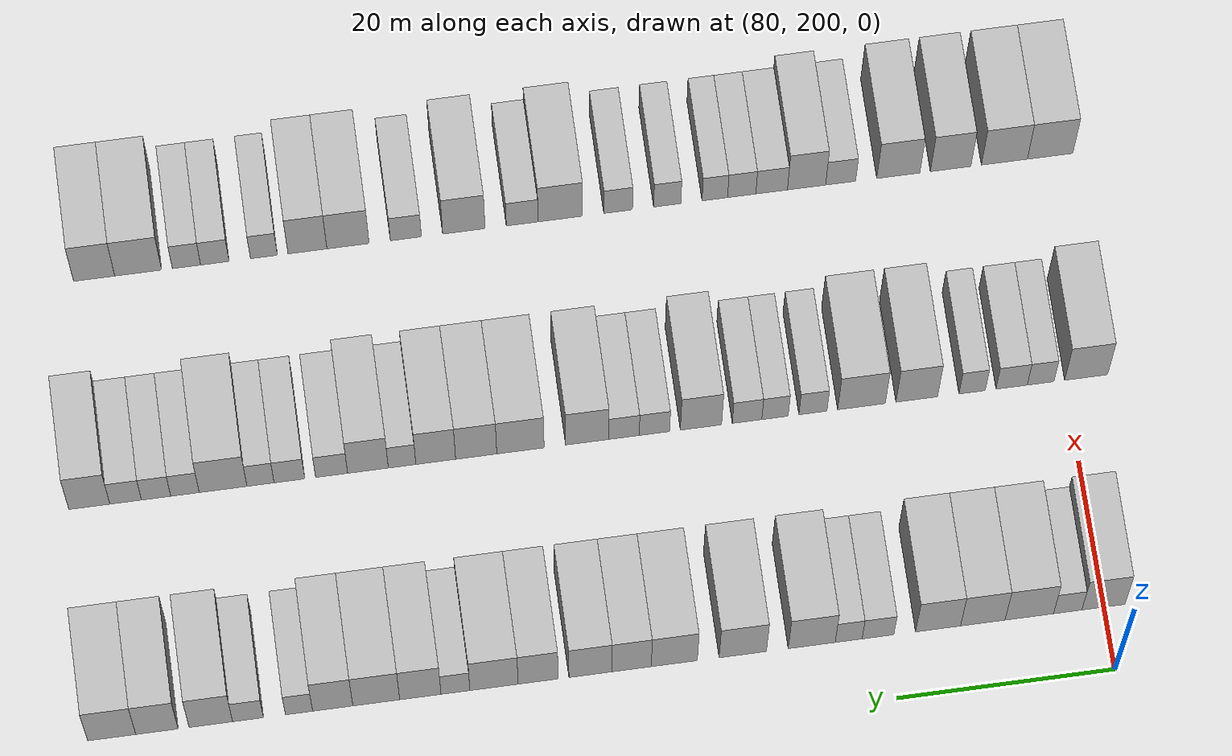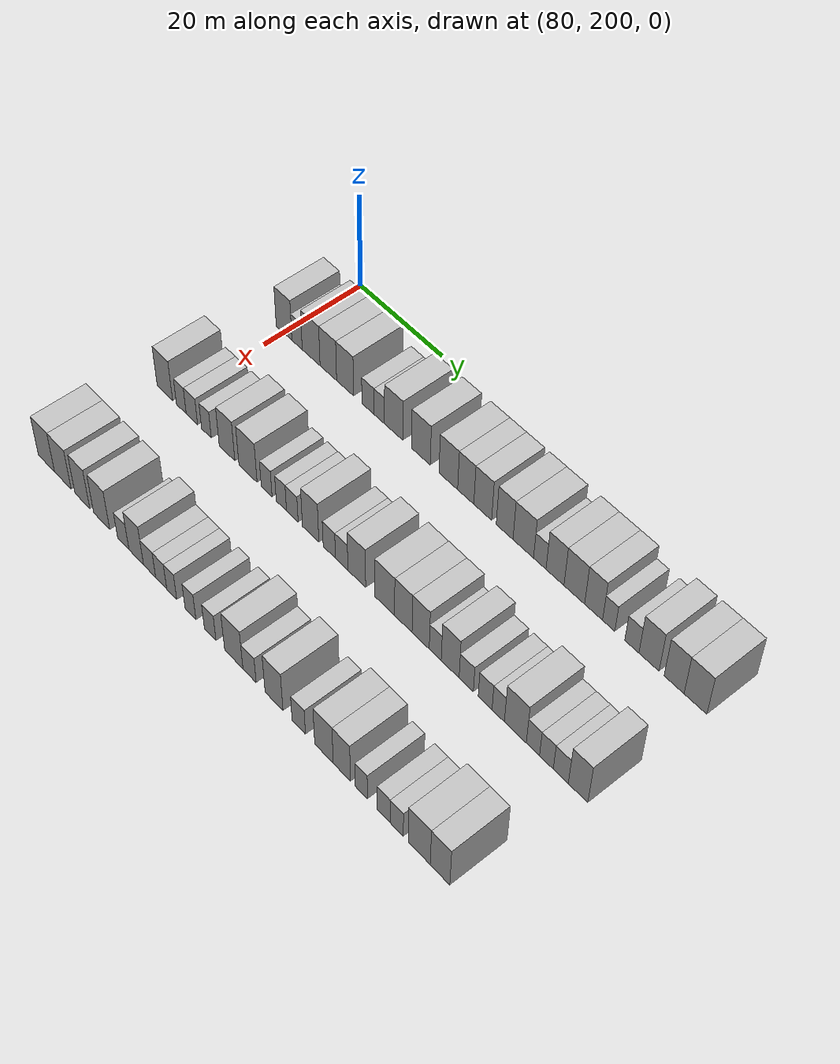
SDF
<sdf version="1.6">
 <world name="default">
  <model name="building_711">
   <static>1</static>
   <pose>91.0000 200.0898 0 0.000000 0.000000 0.000000</pose>
   <link name="link">
    <pose>0 0 4.50 0 0 0</pose>
    <collision name="collision"><geometry><box><size>10.0000 3.9812 9.0000</size></box></geometry></collision>
    <visual name="visual">
     <cast_shadows>0</cast_shadows>
     <geometry><box><size>10.0000 3.9812 9.0000</size></box></geometry>
     <material>
      <script>
       <uri>model://HANNAS_wall/materials/scripts</uri>
       <uri>model://HANNAS_wall/materials/textures</uri>
       <name>vrc/HANNAS_wall</name>
      </script>
     </material>
    </visual>
   </link>
  </model>
  <model name="building_712">
   <static>1</static>
   <pose>91.0000 203.3898 0 0.000000 0.000000 0.000000</pose>
   <link name="link">
    <pose>0 0 3.00 0 0 0</pose>
    <collision name="collision"><geometry><box><size>10.0000 2.6187 6.0000</size></box></geometry></collision>
    <visual name="visual">
     <cast_shadows>0</cast_shadows>
     <geometry><box><size>10.0000 2.6187 6.0000</size></box></geometry>
     <material>
      <script>
       <uri>model://HANNAS_wall/materials/scripts</uri>
       <uri>model://HANNAS_wall/materials/textures</uri>
       <name>vrc/HANNAS_wall</name>
      </script>
     </material>
    </visual>
   </link>
  </model>
  <model name="building_713">
   <static>1</static>
   <pose>91.0000 206.9348 0 0.000000 0.000000 0.000000</pose>
   <link name="link">
    <pose>0 0 4.50 0 0 0</pose>
    <collision name="collision"><geometry><box><size>10.0000 4.4713 9.0000</size></box></geometry></collision>
    <visual name="visual">
     <cast_shadows>0</cast_shadows>
     <geometry><box><size>10.0000 4.4713 9.0000</size></box></geometry>
     <material>
      <script>
       <uri>model://HANNAS_wall/materials/scripts</uri>
       <uri>model://HANNAS_wall/materials/textures</uri>
       <name>vrc/HANNAS_wall</name>
      </script>
     </material>
    </visual>
   </link>
  </model>
  <model name="building_714">
   <static>1</static>
   <pose>91.0000 211.2200 0 0.000000 0.000000 0.000000</pose>
   <link name="link">
    <pose>0 0 4.50 0 0 0</pose>
    <collision name="collision"><geometry><box><size>10.0000 4.0990 9.0000</size></box></geometry></collision>
    <visual name="visual">
     <cast_shadows>0</cast_shadows>
     <geometry><box><size>10.0000 4.0990 9.0000</size></box></geometry>
     <material>
      <script>
       <uri>model://HANNAS_wall/materials/scripts</uri>
       <uri>model://HANNAS_wall/materials/textures</uri>
       <name>vrc/HANNAS_wall</name>
      </script>
     </material>
    </visual>
   </link>
  </model>
  <model name="building_715">
   <static>1</static>
   <pose>91.0000 215.3439 0 0.000000 0.000000 0.000000</pose>
   <link name="link">
    <pose>0 0 4.50 0 0 0</pose>
    <collision name="collision"><geometry><box><size>10.0000 4.1489 9.0000</size></box></geometry></collision>
    <visual name="visual">
     <cast_shadows>0</cast_shadows>
     <geometry><box><size>10.0000 4.1489 9.0000</size></box></geometry>
     <material>
      <script>
       <uri>model://HANNAS_wall/materials/scripts</uri>
       <uri>model://HANNAS_wall/materials/textures</uri>
       <name>vrc/HANNAS_wall</name>
      </script>
     </material>
    </visual>
   </link>
  </model>
  <model name="building_716">
   <static>1</static>
   <pose>91.0000 220.8801 0 0.000000 0.000000 0.000000</pose>
   <link name="link">
    <pose>0 0 3.00 0 0 0</pose>
    <collision name="collision"><geometry><box><size>10.0000 2.9236 6.0000</size></box></geometry></collision>
    <visual name="visual">
     <cast_shadows>0</cast_shadows>
     <geometry><box><size>10.0000 2.9236 6.0000</size></box></geometry>
     <material>
      <script>
       <uri>model://HANNAS_wall/materials/scripts</uri>
       <uri>model://HANNAS_wall/materials/textures</uri>
       <name>vrc/HANNAS_wall</name>
      </script>
     </material>
    </visual>
   </link>
  </model>
  <model name="building_717">
   <static>1</static>
   <pose>91.0000 223.5805 0 0.000000 0.000000 0.000000</pose>
   <link name="link">
    <pose>0 0 3.00 0 0 0</pose>
    <collision name="collision"><geometry><box><size>10.0000 2.4773 6.0000</size></box></geometry></collision>
    <visual name="visual">
     <cast_shadows>0</cast_shadows>
     <geometry><box><size>10.0000 2.4773 6.0000</size></box></geometry>
     <material>
      <script>
       <uri>model://HANNAS_wall/materials/scripts</uri>
       <uri>model://HANNAS_wall/materials/textures</uri>
       <name>vrc/HANNAS_wall</name>
      </script>
     </material>
    </visual>
   </link>
  </model>
  <model name="building_718">
   <static>1</static>
   <pose>91.0000 226.9785 0 0.000000 0.000000 0.000000</pose>
   <link name="link">
    <pose>0 0 4.50 0 0 0</pose>
    <collision name="collision"><geometry><box><size>10.0000 4.3187 9.0000</size></box></geometry></collision>
    <visual name="visual">
     <cast_shadows>0</cast_shadows>
     <geometry><box><size>10.0000 4.3187 9.0000</size></box></geometry>
     <material>
      <script>
       <uri>model://HANNAS_wall/materials/scripts</uri>
       <uri>model://HANNAS_wall/materials/textures</uri>
       <name>vrc/HANNAS_wall</name>
      </script>
     </material>
    </visual>
   </link>
  </model>
  <model name="building_719">
   <static>1</static>
   <pose>91.0000 233.3131 0 0.000000 0.000000 0.000000</pose>
   <link name="link">
    <pose>0 0 4.50 0 0 0</pose>
    <collision name="collision"><geometry><box><size>10.0000 4.3504 9.0000</size></box></geometry></collision>
    <visual name="visual">
     <cast_shadows>0</cast_shadows>
     <geometry><box><size>10.0000 4.3504 9.0000</size></box></geometry>
     <material>
      <script>
       <uri>model://HANNAS_wall/materials/scripts</uri>
       <uri>model://HANNAS_wall/materials/textures</uri>
       <name>vrc/HANNAS_wall</name>
      </script>
     </material>
    </visual>
   </link>
  </model>
  <model name="building_720">
   <static>1</static>
   <pose>91.0000 239.6020 0 0.000000 0.000000 0.000000</pose>
   <link name="link">
    <pose>0 0 4.50 0 0 0</pose>
    <collision name="collision"><geometry><box><size>10.0000 4.2274 9.0000</size></box></geometry></collision>
    <visual name="visual">
     <cast_shadows>0</cast_shadows>
     <geometry><box><size>10.0000 4.2274 9.0000</size></box></geometry>
     <material>
      <script>
       <uri>model://HANNAS_wall/materials/scripts</uri>
       <uri>model://HANNAS_wall/materials/textures</uri>
       <name>vrc/HANNAS_wall</name>
      </script>
     </material>
    </visual>
   </link>
  </model>
  <model name="building_721">
   <static>1</static>
   <pose>91.0000 243.5231 0 0.000000 0.000000 0.000000</pose>
   <link name="link">
    <pose>0 0 4.50 0 0 0</pose>
    <collision name="collision"><geometry><box><size>10.0000 3.6150 9.0000</size></box></geometry></collision>
    <visual name="visual">
     <cast_shadows>0</cast_shadows>
     <geometry><box><size>10.0000 3.6150 9.0000</size></box></geometry>
     <material>
      <script>
       <uri>model://HANNAS_wall/materials/scripts</uri>
       <uri>model://HANNAS_wall/materials/textures</uri>
       <name>vrc/HANNAS_wall</name>
      </script>
     </material>
    </visual>
   </link>
  </model>
  <model name="building_722">
   <static>1</static>
   <pose>91.0000 247.2980 0 0.000000 0.000000 0.000000</pose>
   <link name="link">
    <pose>0 0 4.50 0 0 0</pose>
    <collision name="collision"><geometry><box><size>10.0000 3.9347 9.0000</size></box></geometry></collision>
    <visual name="visual">
     <cast_shadows>0</cast_shadows>
     <geometry><box><size>10.0000 3.9347 9.0000</size></box></geometry>
     <material>
      <script>
       <uri>model://HANNAS_wall/materials/scripts</uri>
       <uri>model://HANNAS_wall/materials/textures</uri>
       <name>vrc/HANNAS_wall</name>
      </script>
     </material>
    </visual>
   </link>
  </model>
  <model name="building_723">
   <static>1</static>
   <pose>91.0000 252.0936 0 0.000000 0.000000 0.000000</pose>
   <link name="link">
    <pose>0 0 4.50 0 0 0</pose>
    <collision name="collision"><geometry><box><size>10.0000 3.6565 9.0000</size></box></geometry></collision>
    <visual name="visual">
     <cast_shadows>0</cast_shadows>
     <geometry><box><size>10.0000 3.6565 9.0000</size></box></geometry>
     <material>
      <script>
       <uri>model://HANNAS_wall/materials/scripts</uri>
       <uri>model://HANNAS_wall/materials/textures</uri>
       <name>vrc/HANNAS_wall</name>
      </script>
     </material>
    </visual>
   </link>
  </model>
  <model name="building_724">
   <static>1</static>
   <pose>91.0000 256.1274 0 0.000000 0.000000 0.000000</pose>
   <link name="link">
    <pose>0 0 4.50 0 0 0</pose>
    <collision name="collision"><geometry><box><size>10.0000 4.4111 9.0000</size></box></geometry></collision>
    <visual name="visual">
     <cast_shadows>0</cast_shadows>
     <geometry><box><size>10.0000 4.4111 9.0000</size></box></geometry>
     <material>
      <script>
       <uri>model://HANNAS_wall/materials/scripts</uri>
       <uri>model://HANNAS_wall/materials/textures</uri>
       <name>vrc/HANNAS_wall</name>
      </script>
     </material>
    </visual>
   </link>
  </model>
  <model name="building_725">
   <static>1</static>
   <pose>91.0000 259.6550 0 0.000000 0.000000 0.000000</pose>
   <link name="link">
    <pose>0 0 3.00 0 0 0</pose>
    <collision name="collision"><geometry><box><size>10.0000 2.6441 6.0000</size></box></geometry></collision>
    <visual name="visual">
     <cast_shadows>0</cast_shadows>
     <geometry><box><size>10.0000 2.6441 6.0000</size></box></geometry>
     <material>
      <script>
       <uri>model://HANNAS_wall/materials/scripts</uri>
       <uri>model://HANNAS_wall/materials/textures</uri>
       <name>vrc/HANNAS_wall</name>
      </script>
     </material>
    </visual>
   </link>
  </model>
  <model name="building_726">
   <static>1</static>
   <pose>91.0000 262.8646 0 0.000000 0.000000 0.000000</pose>
   <link name="link">
    <pose>0 0 4.50 0 0 0</pose>
    <collision name="collision"><geometry><box><size>10.0000 3.7750 9.0000</size></box></geometry></collision>
    <visual name="visual">
     <cast_shadows>0</cast_shadows>
     <geometry><box><size>10.0000 3.7750 9.0000</size></box></geometry>
     <material>
      <script>
       <uri>model://HANNAS_wall/materials/scripts</uri>
       <uri>model://HANNAS_wall/materials/textures</uri>
       <name>vrc/HANNAS_wall</name>
      </script>
     </material>
    </visual>
   </link>
  </model>
  <model name="building_727">
   <static>1</static>
   <pose>91.0000 266.8927 0 0.000000 0.000000 0.000000</pose>
   <link name="link">
    <pose>0 0 4.50 0 0 0</pose>
    <collision name="collision"><geometry><box><size>10.0000 4.2813 9.0000</size></box></geometry></collision>
    <visual name="visual">
     <cast_shadows>0</cast_shadows>
     <geometry><box><size>10.0000 4.2813 9.0000</size></box></geometry>
     <material>
      <script>
       <uri>model://HANNAS_wall/materials/scripts</uri>
       <uri>model://HANNAS_wall/materials/textures</uri>
       <name>vrc/HANNAS_wall</name>
      </script>
     </material>
    </visual>
   </link>
  </model>
  <model name="building_728">
   <static>1</static>
   <pose>91.0000 270.8686 0 0.000000 0.000000 0.000000</pose>
   <link name="link">
    <pose>0 0 4.50 0 0 0</pose>
    <collision name="collision"><geometry><box><size>10.0000 3.6705 9.0000</size></box></geometry></collision>
    <visual name="visual">
     <cast_shadows>0</cast_shadows>
     <geometry><box><size>10.0000 3.6705 9.0000</size></box></geometry>
     <material>
      <script>
       <uri>model://HANNAS_wall/materials/scripts</uri>
       <uri>model://HANNAS_wall/materials/textures</uri>
       <name>vrc/HANNAS_wall</name>
      </script>
     </material>
    </visual>
   </link>
  </model>
  <model name="building_729">
   <static>1</static>
   <pose>91.0000 273.9469 0 0.000000 0.000000 0.000000</pose>
   <link name="link">
    <pose>0 0 3.00 0 0 0</pose>
    <collision name="collision"><geometry><box><size>10.0000 2.4860 6.0000</size></box></geometry></collision>
    <visual name="visual">
     <cast_shadows>0</cast_shadows>
     <geometry><box><size>10.0000 2.4860 6.0000</size></box></geometry>
     <material>
      <script>
       <uri>model://HANNAS_wall/materials/scripts</uri>
       <uri>model://HANNAS_wall/materials/textures</uri>
       <name>vrc/HANNAS_wall</name>
      </script>
     </material>
    </visual>
   </link>
  </model>
  <model name="building_730">
   <static>1</static>
   <pose>91.0000 278.5967 0 0.000000 0.000000 0.000000</pose>
   <link name="link">
    <pose>0 0 3.00 0 0 0</pose>
    <collision name="collision"><geometry><box><size>10.0000 2.8136 6.0000</size></box></geometry></collision>
    <visual name="visual">
     <cast_shadows>0</cast_shadows>
     <geometry><box><size>10.0000 2.8136 6.0000</size></box></geometry>
     <material>
      <script>
       <uri>model://HANNAS_wall/materials/scripts</uri>
       <uri>model://HANNAS_wall/materials/textures</uri>
       <name>vrc/HANNAS_wall</name>
      </script>
     </material>
    </visual>
   </link>
  </model>
  <model name="building_731">
   <static>1</static>
   <pose>91.0000 281.9845 0 0.000000 0.000000 0.000000</pose>
   <link name="link">
    <pose>0 0 4.50 0 0 0</pose>
    <collision name="collision"><geometry><box><size>10.0000 3.9620 9.0000</size></box></geometry></collision>
    <visual name="visual">
     <cast_shadows>0</cast_shadows>
     <geometry><box><size>10.0000 3.9620 9.0000</size></box></geometry>
     <material>
      <script>
       <uri>model://HANNAS_wall/materials/scripts</uri>
       <uri>model://HANNAS_wall/materials/textures</uri>
       <name>vrc/HANNAS_wall</name>
      </script>
     </material>
    </visual>
   </link>
  </model>
  <model name="building_732">
   <static>1</static>
   <pose>91.0000 286.8940 0 0.000000 0.000000 0.000000</pose>
   <link name="link">
    <pose>0 0 4.50 0 0 0</pose>
    <collision name="collision"><geometry><box><size>10.0000 3.8570 9.0000</size></box></geometry></collision>
    <visual name="visual">
     <cast_shadows>0</cast_shadows>
     <geometry><box><size>10.0000 3.8570 9.0000</size></box></geometry>
     <material>
      <script>
       <uri>model://HANNAS_wall/materials/scripts</uri>
       <uri>model://HANNAS_wall/materials/textures</uri>
       <name>vrc/HANNAS_wall</name>
      </script>
     </material>
    </visual>
   </link>
  </model>
  <model name="building_733">
   <static>1</static>
   <pose>91.0000 291.0046 0 0.000000 0.000000 0.000000</pose>
   <link name="link">
    <pose>0 0 4.50 0 0 0</pose>
    <collision name="collision"><geometry><box><size>10.0000 4.3641 9.0000</size></box></geometry></collision>
    <visual name="visual">
     <cast_shadows>0</cast_shadows>
     <geometry><box><size>10.0000 4.3641 9.0000</size></box></geometry>
     <material>
      <script>
       <uri>model://HANNAS_wall/materials/scripts</uri>
       <uri>model://HANNAS_wall/materials/textures</uri>
       <name>vrc/HANNAS_wall</name>
      </script>
     </material>
    </visual>
   </link>
  </model>
  <model name="building_902">
   <static>1</static>
   <pose>113.0000 198.0575 0 0.000000 0.000000 0.000000</pose>
   <link name="link">
    <pose>0 0 4.50 0 0 0</pose>
    <collision name="collision"><geometry><box><size>10.0000 4.0274 9.0000</size></box></geometry></collision>
    <visual name="visual">
     <cast_shadows>0</cast_shadows>
     <geometry><box><size>10.0000 4.0274 9.0000</size></box></geometry>
     <material>
      <script>
       <uri>model://HANNAS_wall/materials/scripts</uri>
       <uri>model://HANNAS_wall/materials/textures</uri>
       <name>vrc/HANNAS_wall</name>
      </script>
     </material>
    </visual>
   </link>
  </model>
  <model name="building_903">
   <static>1</static>
   <pose>113.0000 202.3174 0 0.000000 0.000000 0.000000</pose>
   <link name="link">
    <pose>0 0 3.00 0 0 0</pose>
    <collision name="collision"><geometry><box><size>10.0000 2.4923 6.0000</size></box></geometry></collision>
    <visual name="visual">
     <cast_shadows>0</cast_shadows>
     <geometry><box><size>10.0000 2.4923 6.0000</size></box></geometry>
     <material>
      <script>
       <uri>model://HANNAS_wall/materials/scripts</uri>
       <uri>model://HANNAS_wall/materials/textures</uri>
       <name>vrc/HANNAS_wall</name>
      </script>
     </material>
    </visual>
   </link>
  </model>
  <model name="building_904">
   <static>1</static>
   <pose>113.0000 205.0289 0 0.000000 0.000000 0.000000</pose>
   <link name="link">
    <pose>0 0 3.00 0 0 0</pose>
    <collision name="collision"><geometry><box><size>10.0000 2.9308 6.0000</size></box></geometry></collision>
    <visual name="visual">
     <cast_shadows>0</cast_shadows>
     <geometry><box><size>10.0000 2.9308 6.0000</size></box></geometry>
     <material>
      <script>
       <uri>model://HANNAS_wall/materials/scripts</uri>
       <uri>model://HANNAS_wall/materials/textures</uri>
       <name>vrc/HANNAS_wall</name>
      </script>
     </material>
    </visual>
   </link>
  </model>
  <model name="building_905">
   <static>1</static>
   <pose>113.0000 208.7249 0 0.000000 0.000000 0.000000</pose>
   <link name="link">
    <pose>0 0 3.00 0 0 0</pose>
    <collision name="collision"><geometry><box><size>10.0000 2.4612 6.0000</size></box></geometry></collision>
    <visual name="visual">
     <cast_shadows>0</cast_shadows>
     <geometry><box><size>10.0000 2.4612 6.0000</size></box></geometry>
     <material>
      <script>
       <uri>model://HANNAS_wall/materials/scripts</uri>
       <uri>model://HANNAS_wall/materials/textures</uri>
       <name>vrc/HANNAS_wall</name>
      </script>
     </material>
    </visual>
   </link>
  </model>
  <model name="building_906">
   <static>1</static>
   <pose>113.0000 213.8976 0 0.000000 0.000000 0.000000</pose>
   <link name="link">
    <pose>0 0 4.50 0 0 0</pose>
    <collision name="collision"><geometry><box><size>10.0000 3.8841 9.0000</size></box></geometry></collision>
    <visual name="visual">
     <cast_shadows>0</cast_shadows>
     <geometry><box><size>10.0000 3.8841 9.0000</size></box></geometry>
     <material>
      <script>
       <uri>model://HANNAS_wall/materials/scripts</uri>
       <uri>model://HANNAS_wall/materials/textures</uri>
       <name>vrc/HANNAS_wall</name>
      </script>
     </material>
    </visual>
   </link>
  </model>
  <model name="building_907">
   <static>1</static>
   <pose>113.0000 219.0607 0 0.000000 0.000000 0.000000</pose>
   <link name="link">
    <pose>0 0 4.50 0 0 0</pose>
    <collision name="collision"><geometry><box><size>10.0000 4.4422 9.0000</size></box></geometry></collision>
    <visual name="visual">
     <cast_shadows>0</cast_shadows>
     <geometry><box><size>10.0000 4.4422 9.0000</size></box></geometry>
     <material>
      <script>
       <uri>model://HANNAS_wall/materials/scripts</uri>
       <uri>model://HANNAS_wall/materials/textures</uri>
       <name>vrc/HANNAS_wall</name>
      </script>
     </material>
    </visual>
   </link>
  </model>
  <model name="building_908">
   <static>1</static>
   <pose>113.0000 223.5880 0 0.000000 0.000000 0.000000</pose>
   <link name="link">
    <pose>0 0 3.00 0 0 0</pose>
    <collision name="collision"><geometry><box><size>10.0000 2.6124 6.0000</size></box></geometry></collision>
    <visual name="visual">
     <cast_shadows>0</cast_shadows>
     <geometry><box><size>10.0000 2.6124 6.0000</size></box></geometry>
     <material>
      <script>
       <uri>model://HANNAS_wall/materials/scripts</uri>
       <uri>model://HANNAS_wall/materials/textures</uri>
       <name>vrc/HANNAS_wall</name>
      </script>
     </material>
    </visual>
   </link>
  </model>
  <model name="building_909">
   <static>1</static>
   <pose>113.0000 227.1211 0 0.000000 0.000000 0.000000</pose>
   <link name="link">
    <pose>0 0 3.00 0 0 0</pose>
    <collision name="collision"><geometry><box><size>10.0000 2.4538 6.0000</size></box></geometry></collision>
    <visual name="visual">
     <cast_shadows>0</cast_shadows>
     <geometry><box><size>10.0000 2.4538 6.0000</size></box></geometry>
     <material>
      <script>
       <uri>model://HANNAS_wall/materials/scripts</uri>
       <uri>model://HANNAS_wall/materials/textures</uri>
       <name>vrc/HANNAS_wall</name>
      </script>
     </material>
    </visual>
   </link>
  </model>
  <model name="building_910">
   <static>1</static>
   <pose>113.0000 229.7228 0 0.000000 0.000000 0.000000</pose>
   <link name="link">
    <pose>0 0 3.00 0 0 0</pose>
    <collision name="collision"><geometry><box><size>10.0000 2.7498 6.0000</size></box></geometry></collision>
    <visual name="visual">
     <cast_shadows>0</cast_shadows>
     <geometry><box><size>10.0000 2.7498 6.0000</size></box></geometry>
     <material>
      <script>
       <uri>model://HANNAS_wall/materials/scripts</uri>
       <uri>model://HANNAS_wall/materials/textures</uri>
       <name>vrc/HANNAS_wall</name>
      </script>
     </material>
    </visual>
   </link>
  </model>
  <model name="building_911">
   <static>1</static>
   <pose>113.0000 234.0153 0 0.000000 0.000000 0.000000</pose>
   <link name="link">
    <pose>0 0 4.50 0 0 0</pose>
    <collision name="collision"><geometry><box><size>10.0000 3.8351 9.0000</size></box></geometry></collision>
    <visual name="visual">
     <cast_shadows>0</cast_shadows>
     <geometry><box><size>10.0000 3.8351 9.0000</size></box></geometry>
     <material>
      <script>
       <uri>model://HANNAS_wall/materials/scripts</uri>
       <uri>model://HANNAS_wall/materials/textures</uri>
       <name>vrc/HANNAS_wall</name>
      </script>
     </material>
    </visual>
   </link>
  </model>
  <model name="building_912">
   <static>1</static>
   <pose>113.0000 238.3424 0 0.000000 0.000000 0.000000</pose>
   <link name="link">
    <pose>0 0 3.00 0 0 0</pose>
    <collision name="collision"><geometry><box><size>10.0000 2.8193 6.0000</size></box></geometry></collision>
    <visual name="visual">
     <cast_shadows>0</cast_shadows>
     <geometry><box><size>10.0000 2.8193 6.0000</size></box></geometry>
     <material>
      <script>
       <uri>model://HANNAS_wall/materials/scripts</uri>
       <uri>model://HANNAS_wall/materials/textures</uri>
       <name>vrc/HANNAS_wall</name>
      </script>
     </material>
    </visual>
   </link>
  </model>
  <model name="building_913">
   <static>1</static>
   <pose>113.0000 241.1721 0 0.000000 0.000000 0.000000</pose>
   <link name="link">
    <pose>0 0 3.00 0 0 0</pose>
    <collision name="collision"><geometry><box><size>10.0000 2.8401 6.0000</size></box></geometry></collision>
    <visual name="visual">
     <cast_shadows>0</cast_shadows>
     <geometry><box><size>10.0000 2.8401 6.0000</size></box></geometry>
     <material>
      <script>
       <uri>model://HANNAS_wall/materials/scripts</uri>
       <uri>model://HANNAS_wall/materials/textures</uri>
       <name>vrc/HANNAS_wall</name>
      </script>
     </material>
    </visual>
   </link>
  </model>
  <model name="building_914">
   <static>1</static>
   <pose>113.0000 244.5953 0 0.000000 0.000000 0.000000</pose>
   <link name="link">
    <pose>0 0 4.50 0 0 0</pose>
    <collision name="collision"><geometry><box><size>10.0000 4.0063 9.0000</size></box></geometry></collision>
    <visual name="visual">
     <cast_shadows>0</cast_shadows>
     <geometry><box><size>10.0000 4.0063 9.0000</size></box></geometry>
     <material>
      <script>
       <uri>model://HANNAS_wall/materials/scripts</uri>
       <uri>model://HANNAS_wall/materials/textures</uri>
       <name>vrc/HANNAS_wall</name>
      </script>
     </material>
    </visual>
   </link>
  </model>
  <model name="building_915">
   <static>1</static>
   <pose>113.0000 250.7937 0 0.000000 0.000000 0.000000</pose>
   <link name="link">
    <pose>0 0 4.50 0 0 0</pose>
    <collision name="collision"><geometry><box><size>10.0000 4.3906 9.0000</size></box></geometry></collision>
    <visual name="visual">
     <cast_shadows>0</cast_shadows>
     <geometry><box><size>10.0000 4.3906 9.0000</size></box></geometry>
     <material>
      <script>
       <uri>model://HANNAS_wall/materials/scripts</uri>
       <uri>model://HANNAS_wall/materials/textures</uri>
       <name>vrc/HANNAS_wall</name>
      </script>
     </material>
    </visual>
   </link>
  </model>
  <model name="building_916">
   <static>1</static>
   <pose>113.0000 254.8976 0 0.000000 0.000000 0.000000</pose>
   <link name="link">
    <pose>0 0 4.50 0 0 0</pose>
    <collision name="collision"><geometry><box><size>10.0000 3.8171 9.0000</size></box></geometry></collision>
    <visual name="visual">
     <cast_shadows>0</cast_shadows>
     <geometry><box><size>10.0000 3.8171 9.0000</size></box></geometry>
     <material>
      <script>
       <uri>model://HANNAS_wall/materials/scripts</uri>
       <uri>model://HANNAS_wall/materials/textures</uri>
       <name>vrc/HANNAS_wall</name>
      </script>
     </material>
    </visual>
   </link>
  </model>
  <model name="building_917">
   <static>1</static>
   <pose>113.0000 258.6488 0 0.000000 0.000000 0.000000</pose>
   <link name="link">
    <pose>0 0 4.50 0 0 0</pose>
    <collision name="collision"><geometry><box><size>10.0000 3.6854 9.0000</size></box></geometry></collision>
    <visual name="visual">
     <cast_shadows>0</cast_shadows>
     <geometry><box><size>10.0000 3.6854 9.0000</size></box></geometry>
     <material>
      <script>
       <uri>model://HANNAS_wall/materials/scripts</uri>
       <uri>model://HANNAS_wall/materials/textures</uri>
       <name>vrc/HANNAS_wall</name>
      </script>
     </material>
    </visual>
   </link>
  </model>
  <model name="building_918">
   <static>1</static>
   <pose>113.0000 261.7691 0 0.000000 0.000000 0.000000</pose>
   <link name="link">
    <pose>0 0 3.00 0 0 0</pose>
    <collision name="collision"><geometry><box><size>10.0000 2.5552 6.0000</size></box></geometry></collision>
    <visual name="visual">
     <cast_shadows>0</cast_shadows>
     <geometry><box><size>10.0000 2.5552 6.0000</size></box></geometry>
     <material>
      <script>
       <uri>model://HANNAS_wall/materials/scripts</uri>
       <uri>model://HANNAS_wall/materials/textures</uri>
       <name>vrc/HANNAS_wall</name>
      </script>
     </material>
    </visual>
   </link>
  </model>
  <model name="building_919">
   <static>1</static>
   <pose>113.0000 264.9295 0 0.000000 0.000000 0.000000</pose>
   <link name="link">
    <pose>0 0 4.50 0 0 0</pose>
    <collision name="collision"><geometry><box><size>10.0000 3.7656 9.0000</size></box></geometry></collision>
    <visual name="visual">
     <cast_shadows>0</cast_shadows>
     <geometry><box><size>10.0000 3.7656 9.0000</size></box></geometry>
     <material>
      <script>
       <uri>model://HANNAS_wall/materials/scripts</uri>
       <uri>model://HANNAS_wall/materials/textures</uri>
       <name>vrc/HANNAS_wall</name>
      </script>
     </material>
    </visual>
   </link>
  </model>
  <model name="building_920">
   <static>1</static>
   <pose>113.0000 268.2934 0 0.000000 0.000000 0.000000</pose>
   <link name="link">
    <pose>0 0 3.00 0 0 0</pose>
    <collision name="collision"><geometry><box><size>10.0000 2.9621 6.0000</size></box></geometry></collision>
    <visual name="visual">
     <cast_shadows>0</cast_shadows>
     <geometry><box><size>10.0000 2.9621 6.0000</size></box></geometry>
     <material>
      <script>
       <uri>model://HANNAS_wall/materials/scripts</uri>
       <uri>model://HANNAS_wall/materials/textures</uri>
       <name>vrc/HANNAS_wall</name>
      </script>
     </material>
    </visual>
   </link>
  </model>
  <model name="building_921">
   <static>1</static>
   <pose>113.0000 272.1942 0 0.000000 0.000000 0.000000</pose>
   <link name="link">
    <pose>0 0 3.00 0 0 0</pose>
    <collision name="collision"><geometry><box><size>10.0000 2.8395 6.0000</size></box></geometry></collision>
    <visual name="visual">
     <cast_shadows>0</cast_shadows>
     <geometry><box><size>10.0000 2.8395 6.0000</size></box></geometry>
     <material>
      <script>
       <uri>model://HANNAS_wall/materials/scripts</uri>
       <uri>model://HANNAS_wall/materials/textures</uri>
       <name>vrc/HANNAS_wall</name>
      </script>
     </material>
    </visual>
   </link>
  </model>
  <model name="building_922">
   <static>1</static>
   <pose>113.0000 274.8681 0 0.000000 0.000000 0.000000</pose>
   <link name="link">
    <pose>0 0 3.00 0 0 0</pose>
    <collision name="collision"><geometry><box><size>10.0000 2.5085 6.0000</size></box></geometry></collision>
    <visual name="visual">
     <cast_shadows>0</cast_shadows>
     <geometry><box><size>10.0000 2.5085 6.0000</size></box></geometry>
     <material>
      <script>
       <uri>model://HANNAS_wall/materials/scripts</uri>
       <uri>model://HANNAS_wall/materials/textures</uri>
       <name>vrc/HANNAS_wall</name>
      </script>
     </material>
    </visual>
   </link>
  </model>
  <model name="building_923">
   <static>1</static>
   <pose>113.0000 278.3289 0 0.000000 0.000000 0.000000</pose>
   <link name="link">
    <pose>0 0 4.50 0 0 0</pose>
    <collision name="collision"><geometry><box><size>10.0000 4.4130 9.0000</size></box></geometry></collision>
    <visual name="visual">
     <cast_shadows>0</cast_shadows>
     <geometry><box><size>10.0000 4.4130 9.0000</size></box></geometry>
     <material>
      <script>
       <uri>model://HANNAS_wall/materials/scripts</uri>
       <uri>model://HANNAS_wall/materials/textures</uri>
       <name>vrc/HANNAS_wall</name>
      </script>
     </material>
    </visual>
   </link>
  </model>
  <model name="building_924">
   <static>1</static>
   <pose>113.0000 281.8485 0 0.000000 0.000000 0.000000</pose>
   <link name="link">
    <pose>0 0 3.00 0 0 0</pose>
    <collision name="collision"><geometry><box><size>10.0000 2.6263 6.0000</size></box></geometry></collision>
    <visual name="visual">
     <cast_shadows>0</cast_shadows>
     <geometry><box><size>10.0000 2.6263 6.0000</size></box></geometry>
     <material>
      <script>
       <uri>model://HANNAS_wall/materials/scripts</uri>
       <uri>model://HANNAS_wall/materials/textures</uri>
       <name>vrc/HANNAS_wall</name>
      </script>
     </material>
    </visual>
   </link>
  </model>
  <model name="building_925">
   <static>1</static>
   <pose>113.0000 284.5151 0 0.000000 0.000000 0.000000</pose>
   <link name="link">
    <pose>0 0 3.00 0 0 0</pose>
    <collision name="collision"><geometry><box><size>10.0000 2.7070 6.0000</size></box></geometry></collision>
    <visual name="visual">
     <cast_shadows>0</cast_shadows>
     <geometry><box><size>10.0000 2.7070 6.0000</size></box></geometry>
     <material>
      <script>
       <uri>model://HANNAS_wall/materials/scripts</uri>
       <uri>model://HANNAS_wall/materials/textures</uri>
       <name>vrc/HANNAS_wall</name>
      </script>
     </material>
    </visual>
   </link>
  </model>
  <model name="building_926">
   <static>1</static>
   <pose>113.0000 287.3287 0 0.000000 0.000000 0.000000</pose>
   <link name="link">
    <pose>0 0 3.00 0 0 0</pose>
    <collision name="collision"><geometry><box><size>10.0000 2.9202 6.0000</size></box></geometry></collision>
    <visual name="visual">
     <cast_shadows>0</cast_shadows>
     <geometry><box><size>10.0000 2.9202 6.0000</size></box></geometry>
     <material>
      <script>
       <uri>model://HANNAS_wall/materials/scripts</uri>
       <uri>model://HANNAS_wall/materials/textures</uri>
       <name>vrc/HANNAS_wall</name>
      </script>
     </material>
    </visual>
   </link>
  </model>
  <model name="building_927">
   <static>1</static>
   <pose>113.0000 290.6760 0 0.000000 0.000000 0.000000</pose>
   <link name="link">
    <pose>0 0 4.50 0 0 0</pose>
    <collision name="collision"><geometry><box><size>10.0000 3.7744 9.0000</size></box></geometry></collision>
    <visual name="visual">
     <cast_shadows>0</cast_shadows>
     <geometry><box><size>10.0000 3.7744 9.0000</size></box></geometry>
     <material>
      <script>
       <uri>model://HANNAS_wall/materials/scripts</uri>
       <uri>model://HANNAS_wall/materials/textures</uri>
       <name>vrc/HANNAS_wall</name>
      </script>
     </material>
    </visual>
   </link>
  </model>
  <model name="building_1094">
   <static>1</static>
   <pose>135.0000 197.8492 0 0.000000 0.000000 0.000000</pose>
   <link name="link">
    <pose>0 0 4.50 0 0 0</pose>
    <collision name="collision"><geometry><box><size>10.0000 4.3044 9.0000</size></box></geometry></collision>
    <visual name="visual">
     <cast_shadows>0</cast_shadows>
     <geometry><box><size>10.0000 4.3044 9.0000</size></box></geometry>
     <material>
      <script>
       <uri>model://HANNAS_wall/materials/scripts</uri>
       <uri>model://HANNAS_wall/materials/textures</uri>
       <name>vrc/HANNAS_wall</name>
      </script>
     </material>
    </visual>
   </link>
  </model>
  <model name="building_1095">
   <static>1</static>
   <pose>135.0000 202.1829 0 0.000000 0.000000 0.000000</pose>
   <link name="link">
    <pose>0 0 4.50 0 0 0</pose>
    <collision name="collision"><geometry><box><size>10.0000 4.3629 9.0000</size></box></geometry></collision>
    <visual name="visual">
     <cast_shadows>0</cast_shadows>
     <geometry><box><size>10.0000 4.3629 9.0000</size></box></geometry>
     <material>
      <script>
       <uri>model://HANNAS_wall/materials/scripts</uri>
       <uri>model://HANNAS_wall/materials/textures</uri>
       <name>vrc/HANNAS_wall</name>
      </script>
     </material>
    </visual>
   </link>
  </model>
  <model name="building_1096">
   <static>1</static>
   <pose>135.0000 207.2789 0 0.000000 0.000000 0.000000</pose>
   <link name="link">
    <pose>0 0 4.50 0 0 0</pose>
    <collision name="collision"><geometry><box><size>10.0000 3.8291 9.0000</size></box></geometry></collision>
    <visual name="visual">
     <cast_shadows>0</cast_shadows>
     <geometry><box><size>10.0000 3.8291 9.0000</size></box></geometry>
     <material>
      <script>
       <uri>model://HANNAS_wall/materials/scripts</uri>
       <uri>model://HANNAS_wall/materials/textures</uri>
       <name>vrc/HANNAS_wall</name>
      </script>
     </material>
    </visual>
   </link>
  </model>
  <model name="building_1097">
   <static>1</static>
   <pose>135.0000 212.2318 0 0.000000 0.000000 0.000000</pose>
   <link name="link">
    <pose>0 0 4.50 0 0 0</pose>
    <collision name="collision"><geometry><box><size>10.0000 4.0766 9.0000</size></box></geometry></collision>
    <visual name="visual">
     <cast_shadows>0</cast_shadows>
     <geometry><box><size>10.0000 4.0766 9.0000</size></box></geometry>
     <material>
      <script>
       <uri>model://HANNAS_wall/materials/scripts</uri>
       <uri>model://HANNAS_wall/materials/textures</uri>
       <name>vrc/HANNAS_wall</name>
      </script>
     </material>
    </visual>
   </link>
  </model>
  <model name="building_1098">
   <static>1</static>
   <pose>135.0000 217.6875 0 0.000000 0.000000 0.000000</pose>
   <link name="link">
    <pose>0 0 3.00 0 0 0</pose>
    <collision name="collision"><geometry><box><size>10.0000 2.8347 6.0000</size></box></geometry></collision>
    <visual name="visual">
     <cast_shadows>0</cast_shadows>
     <geometry><box><size>10.0000 2.8347 6.0000</size></box></geometry>
     <material>
      <script>
       <uri>model://HANNAS_wall/materials/scripts</uri>
       <uri>model://HANNAS_wall/materials/textures</uri>
       <name>vrc/HANNAS_wall</name>
      </script>
     </material>
    </visual>
   </link>
  </model>
  <model name="building_1099">
   <static>1</static>
   <pose>135.0000 220.9107 0 0.000000 0.000000 0.000000</pose>
   <link name="link">
    <pose>0 0 4.50 0 0 0</pose>
    <collision name="collision"><geometry><box><size>10.0000 3.6117 9.0000</size></box></geometry></collision>
    <visual name="visual">
     <cast_shadows>0</cast_shadows>
     <geometry><box><size>10.0000 3.6117 9.0000</size></box></geometry>
     <material>
      <script>
       <uri>model://HANNAS_wall/materials/scripts</uri>
       <uri>model://HANNAS_wall/materials/textures</uri>
       <name>vrc/HANNAS_wall</name>
      </script>
     </material>
    </visual>
   </link>
  </model>
  <model name="building_1100">
   <static>1</static>
   <pose>135.0000 224.2065 0 0.000000 0.000000 0.000000</pose>
   <link name="link">
    <pose>0 0 3.00 0 0 0</pose>
    <collision name="collision"><geometry><box><size>10.0000 2.9798 6.0000</size></box></geometry></collision>
    <visual name="visual">
     <cast_shadows>0</cast_shadows>
     <geometry><box><size>10.0000 2.9798 6.0000</size></box></geometry>
     <material>
      <script>
       <uri>model://HANNAS_wall/materials/scripts</uri>
       <uri>model://HANNAS_wall/materials/textures</uri>
       <name>vrc/HANNAS_wall</name>
      </script>
     </material>
    </visual>
   </link>
  </model>
  <model name="building_1101">
   <static>1</static>
   <pose>135.0000 227.0324 0 0.000000 0.000000 0.000000</pose>
   <link name="link">
    <pose>0 0 3.00 0 0 0</pose>
    <collision name="collision"><geometry><box><size>10.0000 2.6719 6.0000</size></box></geometry></collision>
    <visual name="visual">
     <cast_shadows>0</cast_shadows>
     <geometry><box><size>10.0000 2.6719 6.0000</size></box></geometry>
     <material>
      <script>
       <uri>model://HANNAS_wall/materials/scripts</uri>
       <uri>model://HANNAS_wall/materials/textures</uri>
       <name>vrc/HANNAS_wall</name>
      </script>
     </material>
    </visual>
   </link>
  </model>
  <model name="building_1102">
   <static>1</static>
   <pose>135.0000 229.5709 0 0.000000 0.000000 0.000000</pose>
   <link name="link">
    <pose>0 0 3.00 0 0 0</pose>
    <collision name="collision"><geometry><box><size>10.0000 2.4052 6.0000</size></box></geometry></collision>
    <visual name="visual">
     <cast_shadows>0</cast_shadows>
     <geometry><box><size>10.0000 2.4052 6.0000</size></box></geometry>
     <material>
      <script>
       <uri>model://HANNAS_wall/materials/scripts</uri>
       <uri>model://HANNAS_wall/materials/textures</uri>
       <name>vrc/HANNAS_wall</name>
      </script>
     </material>
    </visual>
   </link>
  </model>
  <model name="building_1103">
   <static>1</static>
   <pose>135.0000 234.0555 0 0.000000 0.000000 0.000000</pose>
   <link name="link">
    <pose>0 0 3.00 0 0 0</pose>
    <collision name="collision"><geometry><box><size>10.0000 2.5639 6.0000</size></box></geometry></collision>
    <visual name="visual">
     <cast_shadows>0</cast_shadows>
     <geometry><box><size>10.0000 2.5639 6.0000</size></box></geometry>
     <material>
      <script>
       <uri>model://HANNAS_wall/materials/scripts</uri>
       <uri>model://HANNAS_wall/materials/textures</uri>
       <name>vrc/HANNAS_wall</name>
      </script>
     </material>
    </visual>
   </link>
  </model>
  <model name="building_1104">
   <static>1</static>
   <pose>135.0000 238.6861 0 0.000000 0.000000 0.000000</pose>
   <link name="link">
    <pose>0 0 3.00 0 0 0</pose>
    <collision name="collision"><geometry><box><size>10.0000 2.6974 6.0000</size></box></geometry></collision>
    <visual name="visual">
     <cast_shadows>0</cast_shadows>
     <geometry><box><size>10.0000 2.6974 6.0000</size></box></geometry>
     <material>
      <script>
       <uri>model://HANNAS_wall/materials/scripts</uri>
       <uri>model://HANNAS_wall/materials/textures</uri>
       <name>vrc/HANNAS_wall</name>
      </script>
     </material>
    </visual>
   </link>
  </model>
  <model name="building_1105">
   <static>1</static>
   <pose>135.0000 244.1278 0 0.000000 0.000000 0.000000</pose>
   <link name="link">
    <pose>0 0 4.50 0 0 0</pose>
    <collision name="collision"><geometry><box><size>10.0000 4.1859 9.0000</size></box></geometry></collision>
    <visual name="visual">
     <cast_shadows>0</cast_shadows>
     <geometry><box><size>10.0000 4.1859 9.0000</size></box></geometry>
     <material>
      <script>
       <uri>model://HANNAS_wall/materials/scripts</uri>
       <uri>model://HANNAS_wall/materials/textures</uri>
       <name>vrc/HANNAS_wall</name>
      </script>
     </material>
    </visual>
   </link>
  </model>
  <model name="building_1106">
   <static>1</static>
   <pose>135.0000 247.7153 0 0.000000 0.000000 0.000000</pose>
   <link name="link">
    <pose>0 0 3.00 0 0 0</pose>
    <collision name="collision"><geometry><box><size>10.0000 2.9891 6.0000</size></box></geometry></collision>
    <visual name="visual">
     <cast_shadows>0</cast_shadows>
     <geometry><box><size>10.0000 2.9891 6.0000</size></box></geometry>
     <material>
      <script>
       <uri>model://HANNAS_wall/materials/scripts</uri>
       <uri>model://HANNAS_wall/materials/textures</uri>
       <name>vrc/HANNAS_wall</name>
      </script>
     </material>
    </visual>
   </link>
  </model>
  <model name="building_1107">
   <static>1</static>
   <pose>135.0000 253.1995 0 0.000000 0.000000 0.000000</pose>
   <link name="link">
    <pose>0 0 4.50 0 0 0</pose>
    <collision name="collision"><geometry><box><size>10.0000 3.9792 9.0000</size></box></geometry></collision>
    <visual name="visual">
     <cast_shadows>0</cast_shadows>
     <geometry><box><size>10.0000 3.9792 9.0000</size></box></geometry>
     <material>
      <script>
       <uri>model://HANNAS_wall/materials/scripts</uri>
       <uri>model://HANNAS_wall/materials/textures</uri>
       <name>vrc/HANNAS_wall</name>
      </script>
     </material>
    </visual>
   </link>
  </model>
  <model name="building_1108">
   <static>1</static>
   <pose>135.0000 258.6460 0 0.000000 0.000000 0.000000</pose>
   <link name="link">
    <pose>0 0 3.00 0 0 0</pose>
    <collision name="collision"><geometry><box><size>10.0000 2.9139 6.0000</size></box></geometry></collision>
    <visual name="visual">
     <cast_shadows>0</cast_shadows>
     <geometry><box><size>10.0000 2.9139 6.0000</size></box></geometry>
     <material>
      <script>
       <uri>model://HANNAS_wall/materials/scripts</uri>
       <uri>model://HANNAS_wall/materials/textures</uri>
       <name>vrc/HANNAS_wall</name>
      </script>
     </material>
    </visual>
   </link>
  </model>
  <model name="building_1109">
   <static>1</static>
   <pose>135.0000 264.0817 0 0.000000 0.000000 0.000000</pose>
   <link name="link">
    <pose>0 0 4.50 0 0 0</pose>
    <collision name="collision"><geometry><box><size>10.0000 3.9574 9.0000</size></box></geometry></collision>
    <visual name="visual">
     <cast_shadows>0</cast_shadows>
     <geometry><box><size>10.0000 3.9574 9.0000</size></box></geometry>
     <material>
      <script>
       <uri>model://HANNAS_wall/materials/scripts</uri>
       <uri>model://HANNAS_wall/materials/textures</uri>
       <name>vrc/HANNAS_wall</name>
      </script>
     </material>
    </visual>
   </link>
  </model>
  <model name="building_1110">
   <static>1</static>
   <pose>135.0000 267.8816 0 0.000000 0.000000 0.000000</pose>
   <link name="link">
    <pose>0 0 4.50 0 0 0</pose>
    <collision name="collision"><geometry><box><size>10.0000 3.6424 9.0000</size></box></geometry></collision>
    <visual name="visual">
     <cast_shadows>0</cast_shadows>
     <geometry><box><size>10.0000 3.6424 9.0000</size></box></geometry>
     <material>
      <script>
       <uri>model://HANNAS_wall/materials/scripts</uri>
       <uri>model://HANNAS_wall/materials/textures</uri>
       <name>vrc/HANNAS_wall</name>
      </script>
     </material>
    </visual>
   </link>
  </model>
  <model name="building_1111">
   <static>1</static>
   <pose>135.0000 271.9644 0 0.000000 0.000000 0.000000</pose>
   <link name="link">
    <pose>0 0 3.00 0 0 0</pose>
    <collision name="collision"><geometry><box><size>10.0000 2.5234 6.0000</size></box></geometry></collision>
    <visual name="visual">
     <cast_shadows>0</cast_shadows>
     <geometry><box><size>10.0000 2.5234 6.0000</size></box></geometry>
     <material>
      <script>
       <uri>model://HANNAS_wall/materials/scripts</uri>
       <uri>model://HANNAS_wall/materials/textures</uri>
       <name>vrc/HANNAS_wall</name>
      </script>
     </material>
    </visual>
   </link>
  </model>
  <model name="building_1112">
   <static>1</static>
   <pose>135.0000 276.5583 0 0.000000 0.000000 0.000000</pose>
   <link name="link">
    <pose>0 0 3.00 0 0 0</pose>
    <collision name="collision"><geometry><box><size>10.0000 2.6645 6.0000</size></box></geometry></collision>
    <visual name="visual">
     <cast_shadows>0</cast_shadows>
     <geometry><box><size>10.0000 2.6645 6.0000</size></box></geometry>
     <material>
      <script>
       <uri>model://HANNAS_wall/materials/scripts</uri>
       <uri>model://HANNAS_wall/materials/textures</uri>
       <name>vrc/HANNAS_wall</name>
      </script>
     </material>
    </visual>
   </link>
  </model>
  <model name="building_1113">
   <static>1</static>
   <pose>135.0000 279.2143 0 0.000000 0.000000 0.000000</pose>
   <link name="link">
    <pose>0 0 3.00 0 0 0</pose>
    <collision name="collision"><geometry><box><size>10.0000 2.6474 6.0000</size></box></geometry></collision>
    <visual name="visual">
     <cast_shadows>0</cast_shadows>
     <geometry><box><size>10.0000 2.6474 6.0000</size></box></geometry>
     <material>
      <script>
       <uri>model://HANNAS_wall/materials/scripts</uri>
       <uri>model://HANNAS_wall/materials/textures</uri>
       <name>vrc/HANNAS_wall</name>
      </script>
     </material>
    </visual>
   </link>
  </model>
  <model name="building_1114">
   <static>1</static>
   <pose>135.0000 283.7337 0 0.000000 0.000000 0.000000</pose>
   <link name="link">
    <pose>0 0 4.50 0 0 0</pose>
    <collision name="collision"><geometry><box><size>10.0000 4.3913 9.0000</size></box></geometry></collision>
    <visual name="visual">
     <cast_shadows>0</cast_shadows>
     <geometry><box><size>10.0000 4.3913 9.0000</size></box></geometry>
     <material>
      <script>
       <uri>model://HANNAS_wall/materials/scripts</uri>
       <uri>model://HANNAS_wall/materials/textures</uri>
       <name>vrc/HANNAS_wall</name>
      </script>
     </material>
    </visual>
   </link>
  </model>
  <model name="building_1115">
   <static>1</static>
   <pose>135.0000 287.8532 0 0.000000 0.000000 0.000000</pose>
   <link name="link">
    <pose>0 0 4.50 0 0 0</pose>
    <collision name="collision"><geometry><box><size>10.0000 3.8478 9.0000</size></box></geometry></collision>
    <visual name="visual">
     <cast_shadows>0</cast_shadows>
     <geometry><box><size>10.0000 3.8478 9.0000</size></box></geometry>
     <material>
      <script>
       <uri>model://HANNAS_wall/materials/scripts</uri>
       <uri>model://HANNAS_wall/materials/textures</uri>
       <name>vrc/HANNAS_wall</name>
      </script>
     </material>
    </visual>
   </link>
  </model>
 </world>
</sdf>
